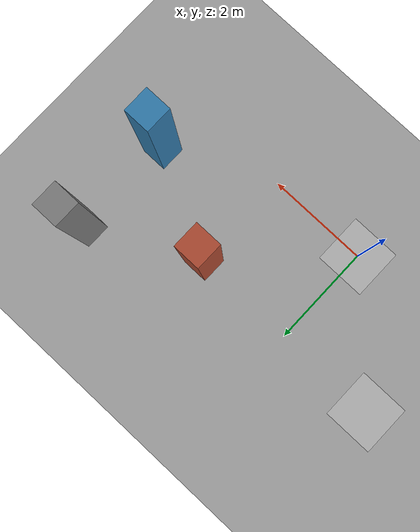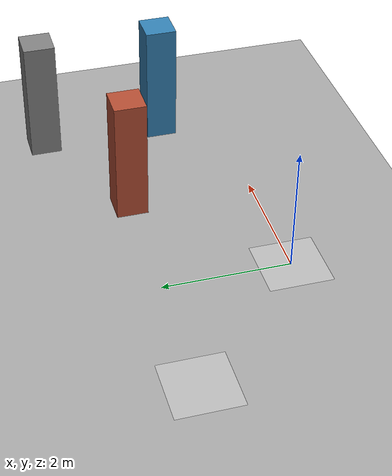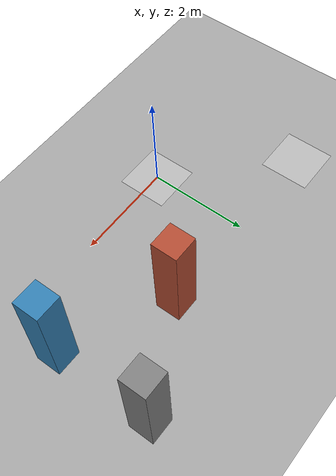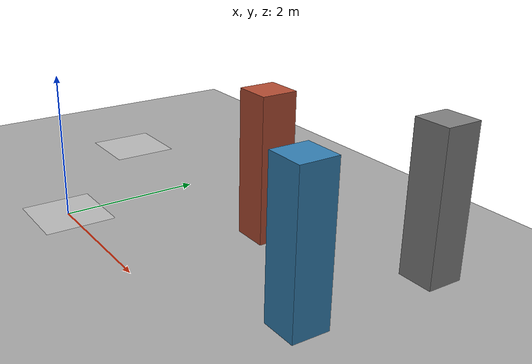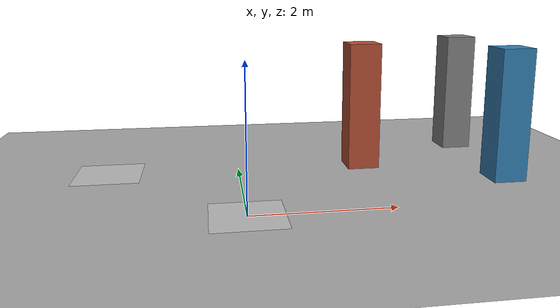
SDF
<?xml version="1.0"?>
<sdf version="1.6">
  <world name="tracking_test">
    <gravity>0 0 -9.81</gravity>

    <physics name="default_physics" type="ode">
      <max_step_size>0.001</max_step_size>
      <real_time_update_rate>1000</real_time_update_rate>
    </physics>

    <!-- Self-contained ground and lighting: no online model downloads. -->
    <light name="sun" type="directional">
      <pose>0 0 10 0 0 0</pose>
      <diffuse>0.8 0.8 0.8 1</diffuse>
      <specular>0.2 0.2 0.2 1</specular>
      <direction>-0.5 0.1 -0.9</direction>
      <cast_shadows>true</cast_shadows>
    </light>

    <model name="ground">
      <static>true</static>
      <link name="ground_link">
        <collision name="collision">
          <geometry>
            <plane>
              <normal>0 0 1</normal>
              <size>30 30</size>
            </plane>
          </geometry>
        </collision>
        <visual name="visual">
          <geometry>
            <plane>
              <normal>0 0 1</normal>
              <size>30 30</size>
            </plane>
          </geometry>
          <material>
            <ambient>0.65 0.65 0.65 1</ambient>
            <diffuse>0.65 0.65 0.65 1</diffuse>
          </material>
        </visual>
      </link>
    </model>

    <model name="box_obstacle">
      <static>true</static>
      <pose>2 2 1 0 0 0</pose>
      <link name="body">
        <collision name="collision">
          <geometry>
            <box>
              <size>0.5 0.5 2</size>
            </box>
          </geometry>
        </collision>
        <visual name="visual">
          <geometry>
            <box>
              <size>0.5 0.5 2</size>
            </box>
          </geometry>
          <material>
            <ambient>0.7 0.3 0.2 1</ambient>
            <diffuse>0.7 0.3 0.2 1</diffuse>
          </material>
        </visual>
      </link>
    </model>

    <model name="pillar_obstacle">
      <static>true</static>
      <pose>4 1 1 0 0 0</pose>
      <link name="body">
        <collision name="collision">
          <geometry>
            <box>
              <size>0.5 0.5 2</size>
            </box>
          </geometry>
        </collision>
        <visual name="visual">
          <geometry>
            <box>
              <size>0.5 0.5 2</size>
            </box>
          </geometry>
          <material>
            <ambient>0.2 0.5 0.7 1</ambient>
            <diffuse>0.2 0.5 0.7 1</diffuse>
          </material>
        </visual>
      </link>
    </model>

    <model name="wall_obstacle">
      <static>true</static>
      <pose>4 3 1 0 0 0</pose>
      <link name="body">
        <collision name="collision">
          <geometry>
            <box>
              <size>0.5 0.5 2</size>
            </box>
          </geometry>
        </collision>
        <visual name="visual">
          <geometry>
            <box>
              <size>0.5 0.5 2</size>
            </box>
          </geometry>
          <material>
            <ambient>0.5 0.5 0.5 1</ambient>
            <diffuse>0.5 0.5 0.5 1</diffuse>
          </material>
        </visual>
      </link>
    </model>

    <!-- Ground image marks the takeoff origin; lift slightly to avoid z-fighting. -->
    <include>
      <uri>model://A_H</uri>
      <name>takeoff_marker</name>
      <pose>0 0 0.01 0 0 0</pose>
    </include>

    <!-- Moving ArUco target: DICT_4X4_50, ID 0, black square side 0.375 m
         on a 0.5 m panel with white margins. Motion is configured in sim_world.yaml. -->
    <include>
      <uri>model://tracking_target</uri>
      <name>tracking_target</name>
      <pose>-2 2 0.02 0 1.57079632679 0</pose>
    </include>

    <gui>
      <camera name="user_camera">
        <pose>-9 -9 7 0 0.4 0.7</pose>
      </camera>
    </gui>
  </world>
</sdf>

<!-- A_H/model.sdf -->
<sdf version="1.6">
  <model name="A_H">
    <static>true</static>
    <link name="marker">
      <!-- Rotate the existing YZ panel into the ground XY plane. -->
      <visual name="image">
        <pose>0 0 0 0 1.57079632679 0</pose>
        <geometry>
          <mesh>
            <uri>model://tracking_target/meshes/panel.dae</uri>
          </mesh>
        </geometry>
        <material>
          <script>
            <uri>model://A_H/materials/scripts</uri>
            <uri>model://A_H</uri>
            <name>Maxt/TakeoffMarker</name>
          </script>
        </material>
      </visual>
    </link>
  </model>
</sdf>

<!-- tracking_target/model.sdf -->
<sdf version="1.6">
  <model name="tracking_target">
    <!-- Static prevents gravity; the Gazebo plugin updates its pose every simulation step. -->
    <static>true</static>
    <link name="panel">
      <collision name="panel_collision">
        <geometry>
          <box>
            <size>0.03 1 1</size>
          </box>
        </geometry>
      </collision>
      <visual name="image">
        <geometry>
          <mesh>
            <uri>model://tracking_target/meshes/panel.dae</uri>
          </mesh>
        </geometry>
        <material>
          <script>
            <uri>model://tracking_target/materials/scripts</uri>
            <uri>model://tracking_target/materials/textures</uri>
            <name>Maxt/TrackingTarget</name>
          </script>
        </material>
      </visual>
    </link>
    <plugin name="moving_target" filename="libmaxt_moving_target_plugin.so">
      <robotNamespace>/moving_target</robotNamespace>
    </plugin>
  </model>
</sdf>
